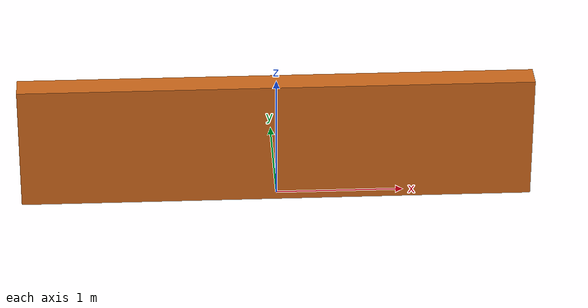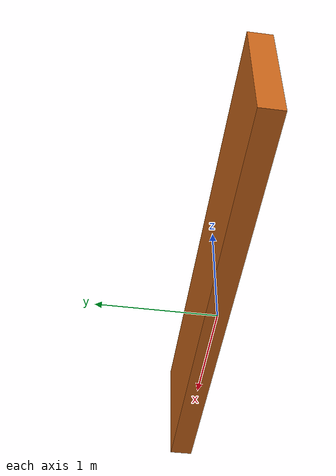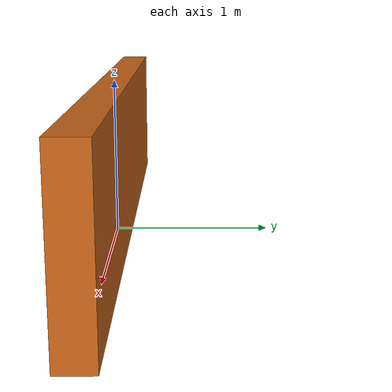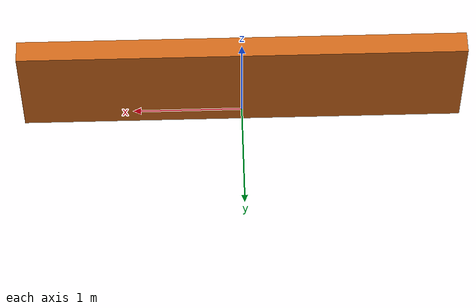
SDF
<?xml version="1.0" ?>
<sdf version="1.9">
  <model name="wall_3">
    <static>true</static>
    <link name="link">
      <collision name="collision">
        <pose>0 0 0.5 0 0 0</pose>
        <geometry>
          <box>
            <size>4.0 0.2 1.0</size>
          </box>
        </geometry>
      </collision>
      <visual name="visual">
        <pose>0 0 0.5 0 0 0</pose>
        <geometry>
          <box>
            <size>4.0 0.2 1.0</size>
          </box>
        </geometry>
        <material>
          <ambient>0.8 0.4 0.1 1</ambient>
          <diffuse>0.8 0.4 0.1 1</diffuse>
        </material>
      </visual>
    </link>
  </model>
</sdf>
